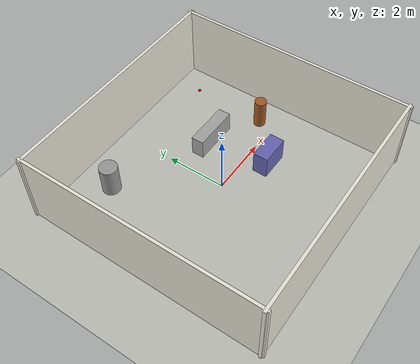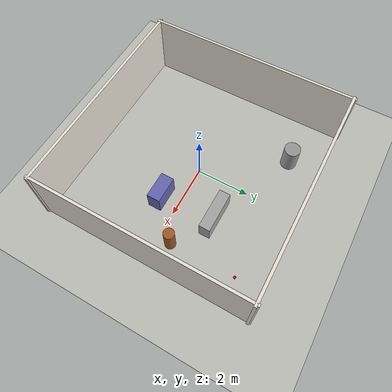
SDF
<?xml version="1.0" ?>
<sdf version="1.8">
  <world name="room_world">

    <physics name="1ms" type="ignored">
      <max_step_size>0.001</max_step_size>
      <real_time_factor>1.0</real_time_factor>
    </physics>

    <plugin filename="gz-sim-physics-system" name="gz::sim::systems::Physics"/>
    <plugin filename="gz-sim-user-commands-system" name="gz::sim::systems::UserCommands"/>
    <plugin filename="gz-sim-scene-broadcaster-system" name="gz::sim::systems::SceneBroadcaster"/>
    <plugin filename="gz-sim-sensors-system" name="gz::sim::systems::Sensors">
      <render_engine>ogre2</render_engine>
    </plugin>

    <light type="directional" name="sun">
      <cast_shadows>true</cast_shadows>
      <pose>0 0 10 0 0 0</pose>
      <diffuse>0.8 0.8 0.8 1</diffuse>
      <specular>0.2 0.2 0.2 1</specular>
      <direction>-0.5 0.1 -0.9</direction>
    </light>

    <model name="ground_plane">
      <static>true</static>
      <link name="link">
        <collision name="collision">
          <geometry><plane><normal>0 0 1</normal></plane></geometry>
          <surface><friction><ode><mu>1.0</mu><mu2>1.0</mu2></ode></friction></surface>
        </collision>
        <visual name="visual">
          <geometry><plane><normal>0 0 1</normal><size>8 8</size></plane></geometry>
          <material>
            <ambient>0.75 0.75 0.72 1</ambient>
            <diffuse>0.75 0.75 0.72 1</diffuse>
            <specular>0.2 0.2 0.2 1</specular>
          </material>
        </visual>
      </link>
    </model>

    <model name="room">
      <static>true</static>

      <link name="wall_back">
        <pose>0 4 1.25 0 0 0</pose>
        <visual name="visual">
          <geometry><box><size>8.2 0.1 2.5</size></box></geometry>
          <material>
            <ambient>0.92 0.90 0.85 1</ambient>
            <diffuse>0.92 0.90 0.85 1</diffuse>
            <specular>0.1 0.1 0.1 1</specular>
          </material>
        </visual>
        <collision name="collision">
          <geometry><box><size>8.2 0.1 2.5</size></box></geometry>
        </collision>
      </link>

      <link name="wall_front">
        <pose>0 -4 1.25 0 0 0</pose>
        <visual name="visual">
          <geometry><box><size>8.2 0.1 2.5</size></box></geometry>
          <material>
            <ambient>0.92 0.90 0.85 1</ambient>
            <diffuse>0.92 0.90 0.85 1</diffuse>
            <specular>0.1 0.1 0.1 1</specular>
          </material>
        </visual>
        <collision name="collision">
          <geometry><box><size>8.2 0.1 2.5</size></box></geometry>
        </collision>
      </link>

      <link name="wall_left">
        <pose>-4 0 1.25 0 0 0</pose>
        <visual name="visual">
          <geometry><box><size>0.1 8.2 2.5</size></box></geometry>
          <material>
            <ambient>0.92 0.90 0.85 1</ambient>
            <diffuse>0.92 0.90 0.85 1</diffuse>
            <specular>0.1 0.1 0.1 1</specular>
          </material>
        </visual>
        <collision name="collision">
          <geometry><box><size>0.1 8.2 2.5</size></box></geometry>
        </collision>
      </link>

      <link name="wall_right">
        <pose>4 0 1.25 0 0 0</pose>
        <visual name="visual">
          <geometry><box><size>0.1 8.2 2.5</size></box></geometry>
          <material>
            <ambient>0.92 0.90 0.85 1</ambient>
            <diffuse>0.92 0.90 0.85 1</diffuse>
            <specular>0.1 0.1 0.1 1</specular>
          </material>
        </visual>
        <collision name="collision">
          <geometry><box><size>0.1 8.2 2.5</size></box></geometry>
        </collision>
      </link>
    </model>

    <model name="obstacle_cylinder1">
      <static>true</static>
      <pose>-2.0 2.8 0.5 0 0 0</pose>
      <link name="link">
        <visual name="visual">
          <geometry><cylinder><radius>0.3</radius><length>1.0</length></cylinder></geometry>
          <material>
            <ambient>0.4 0.4 0.4 1</ambient>
            <diffuse>0.6 0.6 0.6 1</diffuse>
          </material>
        </visual>
        <collision name="collision">
          <geometry><cylinder><radius>0.3</radius><length>1.0</length></cylinder></geometry>
        </collision>
      </link>
    </model>

    <model name="obstacle_box2">
      <static>true</static>
      <pose>1.6 -0.7 0.4 0 0 0</pose>
      <link name="link">
        <visual name="visual">
          <geometry><box><size>1.0 0.5 0.8</size></box></geometry>
          <material>
            <ambient>0.3 0.3 0.5 1</ambient>
            <diffuse>0.4 0.4 0.7 1</diffuse>
          </material>
        </visual>
        <collision name="collision">
          <geometry><box><size>1.0 0.5 0.8</size></box></geometry>
        </collision>
      </link>
    </model>

    <model name="obstacle_cylinder3">
      <static>true</static>
      <pose>3 0.5 0.5 0 0 0</pose>
      <link name="link">
        <visual name="visual">
          <geometry><cylinder><radius>0.2</radius><length>1.0</length></cylinder></geometry>
          <material>
            <ambient>0.45 0.25 0.1 1</ambient>
            <diffuse>0.65 0.35 0.15 1</diffuse>
          </material>
        </visual>
        <collision name="collision">
          <geometry><cylinder><radius>0.2</radius><length>1.0</length></cylinder></geometry>
        </collision>
      </link>
    </model>

    <model name="corridor_wall_n1">
      <static>true</static>
      <pose>1.4 1.38 0.35 0 0 0</pose>
      <link name="link">
        <visual name="visual">
          <geometry><box><size>1.55 0.42 0.7</size></box></geometry>
          <material>
            <ambient>0.55 0.55 0.55 1</ambient>
            <diffuse>0.65 0.65 0.65 1</diffuse>
          </material>
        </visual>
        <collision name="collision">
          <geometry><box><size>1.55 0.42 0.7</size></box></geometry>
        </collision>
      </link>
    </model>

    <model name="start_point">
      <static>true</static>
      <pose>0.0 0.0 0.15 0 0 0</pose>
      <link name="link">
        <visual name="visual">
          <geometry><sphere><radius>0.05</radius></sphere></geometry>
          <material>
            <ambient>0.0 1.0 0.0 1</ambient>
            <diffuse>0.0 1.0 0.0 1</diffuse>
            <specular>0.5 0.5 0.5 1</specular>
          </material>
        </visual>
      </link>
    </model>

    <model name="goal_point">
      <static>true</static>
      <pose>3.0 3.0 0.15 0 0 0</pose>
      <link name="link">
        <visual name="visual">
          <geometry><sphere><radius>0.05</radius></sphere></geometry>
          <material>
            <ambient>1.0 0.0 0.0 1</ambient>
            <diffuse>1.0 0.0 0.0 1</diffuse>
            <specular>0.5 0.5 0.5 1</specular>
          </material>
        </visual>
      </link>
    </model>

  </world>
</sdf>
